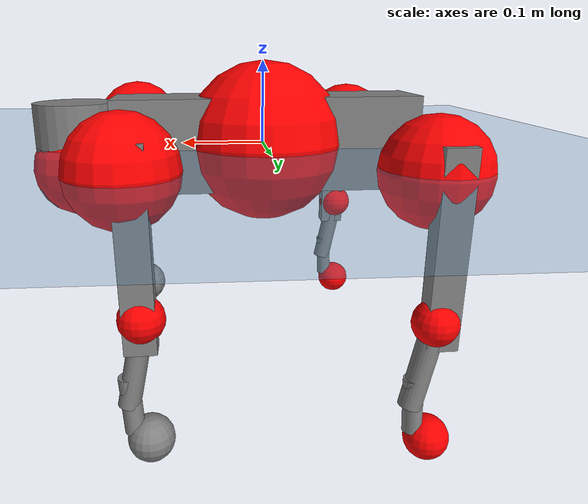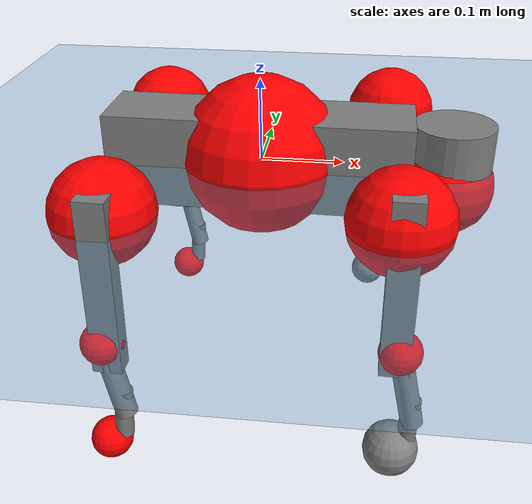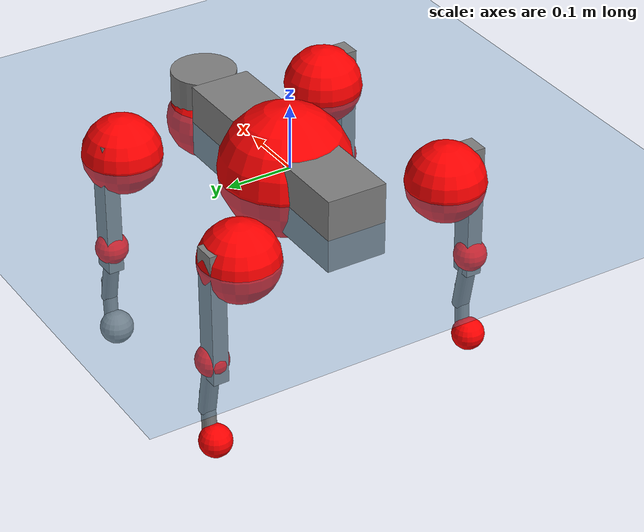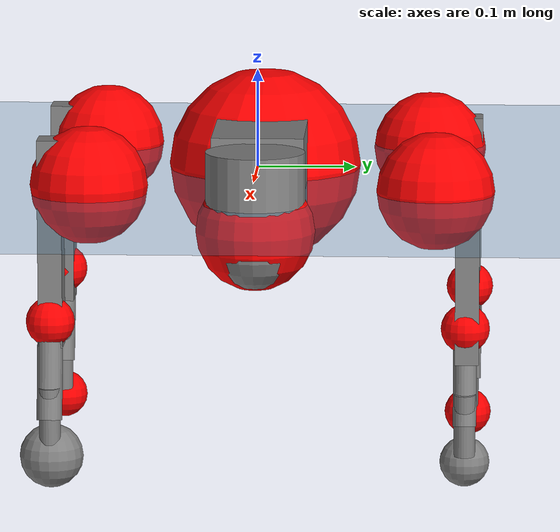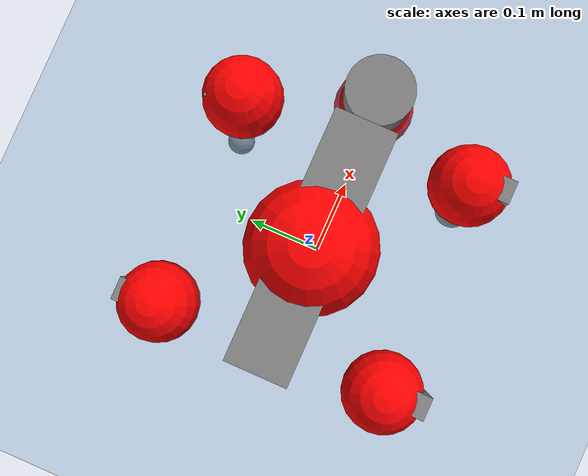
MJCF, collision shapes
<mujoco model="go2">
  <compiler angle="radian" assetdir="assets" balanceinertia="true" inertiafromgeom="false"/>

  <option timestep="0.005" density="1.2" viscosity="2e-05"/>

  <size nkey="1"/>

  <visual>
    <quality shadowsize="8192"/>
    <map shadowclip="0.5"/>
  </visual>

  <default>
    <default class="/">
      <geom contype="0" conaffinity="0" group="1" solref="-1000 -80"/>
      <site size="0.01 0.005 0.005" group="5"/>
      <general forcelimited="true" biastype="affine" gainprm="20" biasprm="0 -20 -0.5"/>
      <default class="go2">
        <joint armature="0.01" damping="0.01" frictionloss="0.2"/>
        <geom condim="1" margin="0.001"/>
        <default class="visual">
          <geom type="mesh" group="2"/>
        </default>
        <default class="collision">
          <geom group="3"/>
          <default class="foot">
            <geom size="0.022 0 0" condim="6" priority="1" friction="0.8 0.02 0.01" solimp="0.015 1 0.022"/>
          </default>
        </default>
        <default class="reward_collision_sphere">
          <geom group="5" rgba="1 0 0 1"/>
        </default>
      </default>
    </default>
  </default>

  <asset>
    <texture type="skybox" colorspace="auto" name="//unnamed_texture_0" builtin="gradient" rgb1="0.95 0.95 0.95" rgb2="0.95 0.95 0.95" width="100" height="600"/>
    <texture type="2d" colorspace="auto" name="texplane" builtin="checker" rgb1="0.345 0.575 0.748" rgb2="0.345 0.575 0.748" markrgb="1 1 1" width="512" height="512"/>
    <material name="MatPlane" class="/" texture="texplane" texuniform="true" texrepeat="2 2" specular="0.9"/>
    <material name="metal" class="/" rgba="0.9 0.95 0.95 1"/>
    <material name="black" class="/" rgba="0 0 0 1"/>
    <material name="white" class="/"/>
    <material name="gray" class="/" rgba="0.671705 0.692426 0.77427 1"/>
    <mesh name="base_0" class="/" file="base_0.obj"/>
    <mesh name="base_1" class="/" file="base_1.obj"/>
    <mesh name="base_2" class="/" file="base_2.obj"/>
    <mesh name="base_3" class="/" file="base_3.obj"/>
    <mesh name="base_4" class="/" file="base_4.obj"/>
    <mesh name="hip_0" class="/" file="hip_0.obj"/>
    <mesh name="hip_1" class="/" file="hip_1.obj"/>
    <mesh name="thigh_0" class="/" file="thigh_0.obj"/>
    <mesh name="thigh_1" class="/" file="thigh_1.obj"/>
    <mesh name="thigh_mirror_0" class="/" file="thigh_mirror_0.obj"/>
    <mesh name="thigh_mirror_1" class="/" file="thigh_mirror_1.obj"/>
    <mesh name="calf_0" class="/" file="calf_0.obj"/>
    <mesh name="calf_1" class="/" file="calf_1.obj"/>
    <mesh name="calf_mirror_0" class="/" file="calf_mirror_0.obj"/>
    <mesh name="calf_mirror_1" class="/" file="calf_mirror_1.obj"/>
    <mesh name="foot" class="/" file="foot.obj"/>
  </asset>

  <worldbody>
    <geom name="floor" class="/" size="100 100 0.125" type="plane" group="0" material="MatPlane"/>
    <light name="toplight_shadow" class="/" pos="0 0 5" dir="0.0990148 0.0990148 -0.990148" type="directional" ambient="0.04 0.04 0.04" diffuse="0.55 0.55 0.55" specular="0.12 0.12 0.12"/>
    <light name="toplight_fill" class="/" pos="0 0 5" dir="0.0990148 0.0990148 -0.990148" type="directional" castshadow="false" ambient="0.04 0.04 0.04" diffuse="0.3 0.3 0.3" specular="0.08 0.08 0.08"/>
    <body name="trunk" childclass="go2" pos="-0.00138108 0.00767565 0.00322703" quat="0.999993 0.000156103 0.00374624 -0.000951715">
      <inertial pos="0.023322 0.0126067 -0.0115359" quat="0.00973 0.73352 0.00289673 0.679592" mass="6.62903" diaginertia="0.0490394 0.815076 0.00270434"/>
      <joint name="//unnamed_joint_0" type="free" armature="0" damping="0" frictionloss="0"/>
      <geom name="//unnamed_geom_1" class="visual" material="black" mesh="base_0"/>
      <geom name="//unnamed_geom_2" class="visual" material="black" mesh="base_1"/>
      <geom name="//unnamed_geom_3" class="visual" material="black" mesh="base_2"/>
      <geom name="//unnamed_geom_4" class="visual" material="white" mesh="base_3"/>
      <geom name="//unnamed_geom_5" class="visual" material="gray" mesh="base_4"/>
      <geom name="trunk_1" class="collision" size="0.183903 0.0457069 0.0557283" type="box"/>
      <geom name="trunk_2" class="collision" size="0.0488844 0.043996" pos="0.230125 0 0.0064195" type="cylinder"/>
      <geom name="trunk_3" class="collision" size="0.0459514" pos="0.236584 0 -0.038517"/>
      <geom name="//unnamed_geom_9" class="reward_collision_sphere" size="0.0977689"/>
      <geom name="//unnamed_geom_10" class="reward_collision_sphere" size="0.0586613" pos="0.226087 0 -0.0288877"/>
      <site name="imu" pos="-0.020314 0.0032784 0.030521" size="0.00977689"/>
      <camera name="track" pos="0 -2.96732 0" quat="0.707107 0.707107 0 0" mode="trackcom"/>
      <camera name="ego_camera" pos="0.251926 0 0.0288877" quat="-0.5 -0.5 0.5 0.5"/>
      <body name="FL_hip" pos="0.156521 0.0717704 -0.000107641" quat="1 -0.000187764 0.000196015 0.000426274">
        <inertial pos="-0.00358606 0.0127348 0.00188212" quat="0.444282 0.50153 0.505753 0.54341" mass="0.629101" diaginertia="0.000294824 0.00446224 5.06455e-05"/>
        <joint name="FL_hip_joint" pos="0 0 0" axis="0.999474 -0.00586131 -0.0318924" range="-0.928044 1.07013" armature="0.0100174" damping="0.0155087" frictionloss="0.181518"/>
        <geom name="//unnamed_geom_11" class="visual" material="metal" mesh="hip_0"/>
        <geom name="//unnamed_geom_12" class="visual" material="gray" mesh="hip_1"/>
        <geom name="//unnamed_geom_13" class="collision" size="0.0449737 0.0195538" pos="0 0.118693 0" quat="0.707107 0.707107 0 0" type="cylinder"/>
        <geom name="//unnamed_geom_14" class="reward_collision_sphere" size="0.0586613" pos="0 0.103856 0"/>
        <body name="FL_thigh" pos="-0.00962185 0.135726 -0.00273447" quat="0.999979 0.000292051 0.00559726 -0.00334425">
          <inertial pos="-0.00435551 -0.0461748 -0.0198717" quat="0.840794 0.0790116 -0.0268236 0.534886" mass="1.01425" diaginertia="0.00235861 0.0360873 9.76133e-05"/>
          <joint name="FL_thigh_joint" pos="0 0 0" axis="-0.0190692 0.99919 -0.0354359" range="-1.41314 3.72296" armature="0.00351376" damping="0.00632335" frictionloss="0.257341"/>
          <geom name="//unnamed_geom_15" class="visual" material="metal" mesh="thigh_0"/>
          <geom name="//unnamed_geom_16" class="visual" material="gray" mesh="thigh_1"/>
          <geom name="//unnamed_geom_17" class="collision" size="0.104124 0.0119767 0.0166207" pos="0 0 -0.0683676" quat="0.707107 0 0.707107 0" type="box"/>
          <body name="FL_calf" pos="-0.00178174 -0.00162232 -0.138908" quat="1 5.65573e-05 -8.0233e-05 -0.000193372">
            <inertial pos="0.0159061 0.0062324 -0.0812688" quat="0.705188 0.018115 -0.0110981 0.708702" mass="0.234604" diaginertia="0.000561777 0.00981047 6.31951e-06"/>
            <joint name="FL_calf_joint" pos="0 0 0" axis="-0.0133782 0.999712 -0.0199409" range="-2.9858 -1.02485" armature="0.0131224" damping="0.0594512" frictionloss="0.161588"/>
            <geom name="//unnamed_geom_18" class="visual" material="gray" mesh="calf_0"/>
            <geom name="//unnamed_geom_19" class="visual" material="black" mesh="calf_1"/>
            <geom name="FL_calf0" class="collision" size="0.0117323 0.0586613" pos="0.00645964 0 -0.038517" quat="0.994493 0 -0.104807 0" type="cylinder"/>
            <geom name="//unnamed_geom_21" class="collision" size="0.0107546 0.0317749" pos="0.0161491 0 -0.0950085" quat="0.999688 0 0.0249974 0" type="cylinder"/>
            <geom name="//unnamed_geom_22" class="visual" pos="0 0 -0.136735" quat="1 0 0 0" material="black" mesh="foot"/>
            <geom name="FL_foot" class="foot" size="0.0249696" pos="-0.00161491 0 -0.136735"/>
            <geom name="//unnamed_geom_24" class="reward_collision_sphere" size="0.0244422"/>
            <geom name="//unnamed_geom_25" class="reward_collision_sphere" size="0.0244422" pos="-0.00161491 0 -0.136735"/>
            <site name="FL_foot" class="foot" pos="-0.00161491 0 -0.136735" size="0.00977689"/>
          </body>
        </body>
      </body>
      <body name="FR_hip" pos="0.169058 -0.0637437 0.00601001" quat="1 6.61316e-05 -0.000733832 -0.000484121">
        <inertial pos="-0.00357397 -0.0071483 0.00465355" quat="0.481454 0.541644 0.512577 0.460531" mass="0.677576" diaginertia="0.000340023 0.00428552 5.06989e-05"/>
        <joint name="FR_hip_joint" pos="0 0 0" axis="0.999484 -0.0153388 0.0282341" stiffness="0.0678521" range="-1.04883 0.841165" armature="0.0119349" damping="0.020349" frictionloss="0.167622"/>
        <geom name="//unnamed_geom_26" class="visual" pos="0 7.33265e-09 3.14512e-07" quat="4.63268e-05 1 0 0" material="metal" mesh="hip_0"/>
        <geom name="//unnamed_geom_27" class="visual" pos="0 1.18871e-08 -7.77909e-07" quat="4.63268e-05 1 0 0" material="gray" mesh="hip_1"/>
        <geom name="//unnamed_geom_28" class="collision" size="0.0449737 0.0195538" pos="0 -0.118693 0" quat="0.707107 0.707107 0 0" type="cylinder"/>
        <geom name="//unnamed_geom_29" class="reward_collision_sphere" size="0.0586613" pos="0 -0.103856 0"/>
        <body name="FR_thigh" pos="0.00442783 -0.141873 0.0110496" quat="0.999999 0.000702876 0.000421036 -0.000818808">
          <inertial pos="-0.00871378 0.0404314 -0.0325551" quat="0.539885 -0.0287945 0.0954796 0.83581" mass="1.02373" diaginertia="0.00221016 0.0415402 9.48326e-05"/>
          <joint name="FR_thigh_joint" pos="0 0 0" axis="0.0130346 -0.999865 0.0100023" range="-3.51382 1.49573" armature="0.0146245" damping="0" frictionloss="0.264689"/>
          <geom name="//unnamed_geom_30" class="visual" material="metal" mesh="thigh_mirror_0"/>
          <geom name="//unnamed_geom_31" class="visual" material="gray" mesh="thigh_mirror_1"/>
          <geom name="//unnamed_geom_32" class="collision" size="0.104124 0.0119767 0.0166207" pos="0 0 -0.0683676" quat="0.707107 0 0.707107 0" type="box"/>
          <body name="FR_calf" pos="0.00542652 -0.000758804 -0.14766" quat="1 -0.000752516 -0.000469135 -0.000229873">
            <inertial pos="0.0122007 -0.00659586 -0.0913046" quat="0.709256 -0.0240999 0.0108237 0.704456" mass="0.188188" diaginertia="0.000451475 0.00791787 5.27293e-06"/>
            <joint name="FR_calf_joint" pos="0 0 0" axis="0.00162545 -0.999999 0.00047173" stiffness="0.000902596" range="0.766701 2.66923" armature="0.0101591" damping="0.0693321" frictionloss="0.234509"/>
            <geom name="//unnamed_geom_33" class="visual" material="gray" mesh="calf_mirror_0"/>
            <geom name="//unnamed_geom_34" class="visual" material="black" mesh="calf_mirror_1"/>
            <geom name="FR_calf0" class="collision" size="0.01271 0.0586613" pos="0.00807455 0 -0.038517" quat="0.995004 0 -0.0998334 0" type="cylinder"/>
            <geom name="//unnamed_geom_36" class="collision" size="0.0107546 0.0317749" pos="0.0161491 0 -0.0950085" quat="0.999688 0 0.0249974 0" type="cylinder"/>
            <geom name="//unnamed_geom_37" class="visual" pos="0 0 -0.136735" quat="1 0 0 0" material="black" mesh="foot"/>
            <geom name="FR_foot" class="foot" size="0.0319022" pos="-0.00161491 0 -0.136735"/>
            <geom name="//unnamed_geom_39" class="reward_collision_sphere" size="0.0244422"/>
            <geom name="//unnamed_geom_40" class="reward_collision_sphere" size="0.0244422" pos="-0.00161491 0 -0.136735"/>
            <site name="FR_foot" class="foot" pos="-0.00161491 0 -0.136735" size="0.00977689"/>
          </body>
        </body>
      </body>
      <body name="RL_hip" pos="-0.156688 0.0633275 -0.00899527" quat="1 5.97824e-05 -0.000394683 1.25055e-05">
        <inertial pos="0.00274116 0.0047697 -0.00704786" quat="0.51081 0.490509 0.494739 0.503694" mass="0.778358" diaginertia="0.000325962 0.00482979 5.06892e-05"/>
        <joint name="RL_hip_joint" pos="0 0 0" axis="-0.999744 -0.0224321 -0.00290995" range="-1.25067 1.12309" armature="0.0106705" damping="0.00503984" frictionloss="0.107494"/>
        <geom name="//unnamed_geom_41" class="visual" pos="-1.44182e-09 0 -2.8263e-07" quat="4.63268e-05 0 1 0" material="metal" mesh="hip_0"/>
        <geom name="//unnamed_geom_42" class="visual" pos="-2.33736e-09 0 -2.50652e-07" quat="4.63268e-05 0 1 0" material="gray" mesh="hip_1"/>
        <geom name="//unnamed_geom_43" class="collision" size="0.0449737 0.0195538" pos="0 0.118693 0" quat="0.707107 0.707107 0 0" type="cylinder"/>
        <geom name="//unnamed_geom_44" class="reward_collision_sphere" size="0.0586613" pos="0 0.103856 0"/>
        <body name="RL_thigh" pos="-0.00202173 0.147109 -0.00260128" quat="0.999983 -0.00449714 -0.000593179 0.00368246">
          <inertial pos="-0.00242058 -0.0469099 -0.0246973" quat="0.816711 0.0507071 -0.00847201 0.574753" mass="1.2373" diaginertia="0.00218658 0.0383669 8.23461e-05"/>
          <joint name="RL_thigh_joint" pos="0 0 0" axis="-0.0286953 0.997861 0.0587413" stiffness="0.00102942" range="-0.517059 4.51794" armature="0.0060282" damping="0" frictionloss="0.257682"/>
          <geom name="//unnamed_geom_45" class="visual" material="metal" mesh="thigh_0"/>
          <geom name="//unnamed_geom_46" class="visual" material="gray" mesh="thigh_1"/>
          <geom name="//unnamed_geom_47" class="collision" size="0.104124 0.0119767 0.0166207" pos="0 0 -0.0683676" quat="0.707107 0 0.707107 0" type="box"/>
          <body name="RL_calf" pos="0.00507819 0.000985593 -0.144979" quat="0.999995 -0.000435772 0.00225152 0.00197126">
            <inertial pos="0.00676943 -0.0107618 -0.090933" quat="0.711612 -0.000642028 -0.00436858 0.702558" mass="0.231269" diaginertia="0.00055676 0.0114848 6.36684e-06"/>
            <joint name="RL_calf_joint" pos="0 0 0" axis="-0.00828662 0.999956 0.00428136" range="-2.97671 -0.802971" armature="0.00335738" damping="0" frictionloss="0.267319"/>
            <geom name="//unnamed_geom_48" class="visual" material="gray" mesh="calf_0"/>
            <geom name="//unnamed_geom_49" class="visual" material="black" mesh="calf_1"/>
            <geom name="RL_calf0" class="collision" size="0.01271 0.0586613" pos="0.00807455 0 -0.038517" quat="0.995004 0 -0.0998334 0" type="cylinder"/>
            <geom name="//unnamed_geom_51" class="collision" size="0.0107546 0.0317749" pos="0.0161491 0 -0.0950085" quat="0.999688 0 0.0249974 0" type="cylinder"/>
            <geom name="//unnamed_geom_52" class="visual" pos="0 0 -0.136735" quat="1 0 0 0" material="black" mesh="foot"/>
            <geom name="RL_foot" class="foot" size="0.0232339" pos="-0.00161491 0 -0.136735"/>
            <geom name="//unnamed_geom_54" class="reward_collision_sphere" size="0.0244422"/>
            <geom name="//unnamed_geom_55" class="reward_collision_sphere" size="0.0244422" pos="-0.00161491 0 -0.136735"/>
            <site name="RL_foot" class="foot" pos="-0.00161491 0 -0.136735" size="0.00977689"/>
          </body>
        </body>
      </body>
      <body name="RR_hip" pos="-0.143534 -0.0680595 -0.00236518" quat="0.999977 -0.00409648 0.00358796 -0.00409333">
        <inertial pos="0.00494369 0.000310682 0.00036947" quat="0.500569 0.501929 0.496993 0.500495" mass="0.672863" diaginertia="0.000324486 0.00440346 4.63797e-05"/>
        <joint name="RR_hip_joint" pos="0 0 0" axis="-0.999999 -0.00166435 0.000122744" range="-1.01435 0.890703" armature="0.00425726" damping="0.0128492" frictionloss="0.127272"/>
        <geom name="//unnamed_geom_56" class="visual" pos="1.46523e-09 7.33265e-09 -5.97142e-07" quat="2.14617e-09 4.63268e-05 4.63268e-05 -1" material="metal" mesh="hip_0"/>
        <geom name="//unnamed_geom_57" class="visual" pos="2.27946e-09 1.18871e-08 5.27257e-07" quat="2.14617e-09 4.63268e-05 4.63268e-05 -1" material="gray" mesh="hip_1"/>
        <geom name="//unnamed_geom_58" class="collision" size="0.0449737 0.0195538" pos="0 -0.118693 0" quat="0.707107 0.707107 0 0" type="cylinder"/>
        <geom name="//unnamed_geom_59" class="reward_collision_sphere" size="0.0586613" pos="0 -0.103856 0"/>
        <body name="RR_thigh" pos="0.0079363 -0.150869 0.00362758" quat="0.999997 0.000176997 -0.00055069 -0.00217976">
          <inertial pos="-0.00209054 0.0418601 -0.0212161" quat="0.553176 -0.0159725 0.08426 0.828639" mass="1.00793" diaginertia="0.00199413 0.0424192 0.000102067"/>
          <joint name="RR_thigh_joint" pos="0 0 0" axis="0.00569655 -0.999984 0.0002715" range="-4.52248 0.258395" armature="0.0158808" damping="0" frictionloss="0.191488"/>
          <geom name="//unnamed_geom_60" class="visual" material="metal" mesh="thigh_mirror_0"/>
          <geom name="//unnamed_geom_61" class="visual" material="gray" mesh="thigh_mirror_1"/>
          <geom name="//unnamed_geom_62" class="collision" size="0.104124 0.0119767 0.0166207" pos="0 0 -0.0683676" quat="0.707107 0 0.707107 0" type="box"/>
          <body name="RR_calf" pos="-0.00670895 0.000144858 -0.14148" quat="1 3.11301e-07 -5.27919e-06 -1.73227e-05">
            <inertial pos="0.0115796 0.00028281 -0.0914159" quat="0.704903 -0.00113241 0.00171322 0.709301" mass="0.206215" diaginertia="0.000498357 0.00990611 5.85699e-06"/>
            <joint name="RR_calf_joint" pos="0 0 0" axis="-3.26723e-05 -0.998961 -0.0455764" range="0.621927 2.61344" armature="0.0105193" damping="0.00640614" frictionloss="0.134577"/>
            <geom name="//unnamed_geom_63" class="visual" material="gray" mesh="calf_mirror_0"/>
            <geom name="//unnamed_geom_64" class="visual" material="black" mesh="calf_mirror_1"/>
            <geom name="RR_calf0" class="collision" size="0.01271 0.0586613" pos="0.00807455 0 -0.038517" quat="0.995004 0 -0.0998334 0" type="cylinder"/>
            <geom name="//unnamed_geom_66" class="collision" size="0.0107546 0.0317749" pos="0.0161491 0 -0.0950085" quat="0.999688 0 0.0249974 0" type="cylinder"/>
            <geom name="//unnamed_geom_67" class="visual" pos="0 0 -0.136735" quat="1 0 0 0" material="black" mesh="foot"/>
            <geom name="RR_foot" class="foot" size="0.0106464" pos="-0.00161491 0 -0.136735"/>
            <geom name="//unnamed_geom_69" class="reward_collision_sphere" size="0.0244422"/>
            <geom name="//unnamed_geom_70" class="reward_collision_sphere" size="0.0244422" pos="-0.00161491 0 -0.136735"/>
            <site name="RR_foot" class="foot" pos="-0.00161491 0 -0.136735" size="0.00977689"/>
          </body>
        </body>
      </body>
    </body>
  </worldbody>

  <contact>
    <pair class="/" geom1="floor" geom2="FL_foot" name="//unnamed_contact_0"/>
    <pair class="/" geom1="floor" geom2="FR_foot" name="//unnamed_contact_1"/>
    <pair class="/" geom1="floor" geom2="RL_foot" name="//unnamed_contact_2"/>
    <pair class="/" geom1="floor" geom2="RR_foot" name="//unnamed_contact_3"/>
  </contact>

  <actuator>
    <general name="FL_hip" class="/" joint="FL_hip_joint" forcerange="-18.6204 18.6204" gainprm="20.2005" biasprm="0 -20.2005 -0.495632"/>
    <general name="FL_thigh" class="/" joint="FL_thigh_joint" forcerange="-21.9219 21.9219" gainprm="20.2005" biasprm="0 -20.2005 -0.495632"/>
    <general name="FL_calf" class="/" joint="FL_calf_joint" forcerange="-45.8076 45.8076" gainprm="20.2005" biasprm="0 -20.2005 -0.495632"/>
    <general name="FR_hip" class="/" joint="FR_hip_joint" forcerange="-28.1794 28.1794" gainprm="20.2005" biasprm="0 -20.2005 -0.495632"/>
    <general name="FR_thigh" class="/" joint="FR_thigh_joint" forcerange="-22.2871 22.2871" gainprm="20.2005" biasprm="0 -20.2005 -0.495632"/>
    <general name="FR_calf" class="/" joint="FR_calf_joint" forcerange="-58.6032 58.6032" gainprm="20.2005" biasprm="0 -20.2005 -0.495632"/>
    <general name="RL_hip" class="/" joint="RL_hip_joint" forcerange="-26.1925 26.1925" gainprm="20.2005" biasprm="0 -20.2005 -0.495632"/>
    <general name="RL_thigh" class="/" joint="RL_thigh_joint" forcerange="-22.2822 22.2822" gainprm="20.2005" biasprm="0 -20.2005 -0.495632"/>
    <general name="RL_calf" class="/" joint="RL_calf_joint" forcerange="-39.9753 39.9753" gainprm="20.2005" biasprm="0 -20.2005 -0.495632"/>
    <general name="RR_hip" class="/" joint="RR_hip_joint" forcerange="-27.8996 27.8996" gainprm="20.2005" biasprm="0 -20.2005 -0.495632"/>
    <general name="RR_thigh" class="/" joint="RR_thigh_joint" forcerange="-19.6126 19.6126" gainprm="20.2005" biasprm="0 -20.2005 -0.495632"/>
    <general name="RR_calf" class="/" joint="RR_calf_joint" forcerange="-25.9459 25.9459" gainprm="20.2005" biasprm="0 -20.2005 -0.495632"/>
  </actuator>

  <sensor>
    <gyro site="imu" name="imu_angular_velocity"/>
    <velocimeter site="imu" name="imu_linear_velocity"/>
    <framelinvel objtype="site" objname="FL_foot" name="FL_foot_global_linear_velocity"/>
    <framelinvel objtype="site" objname="FR_foot" name="FR_foot_global_linear_velocity"/>
    <framelinvel objtype="site" objname="RL_foot" name="RL_foot_global_linear_velocity"/>
    <framelinvel objtype="site" objname="RR_foot" name="RR_foot_global_linear_velocity"/>
  </sensor>

  <keyframe>
    <key name="home" qpos="0 0 0.325 1 0 0 0 0.1 0.8 -1.5 -0.1 -0.8 1.5 -0.1 0.8 -1.5 0.1 -0.8 1.5"/>
  </keyframe>
</mujoco>
